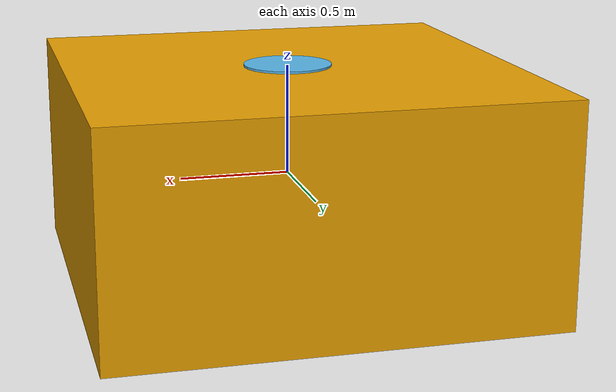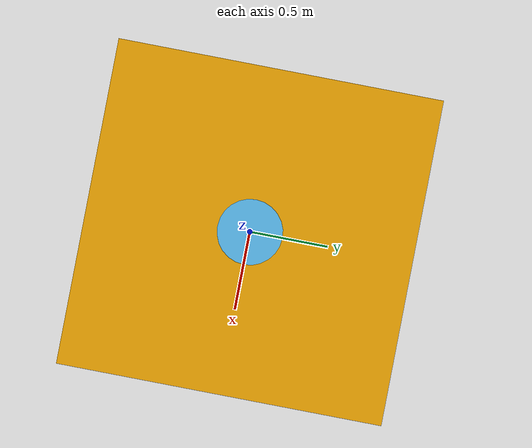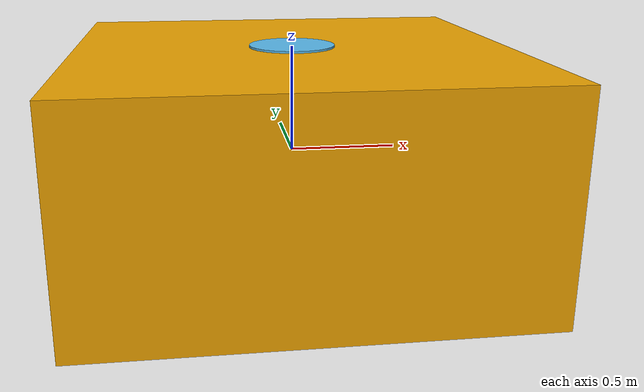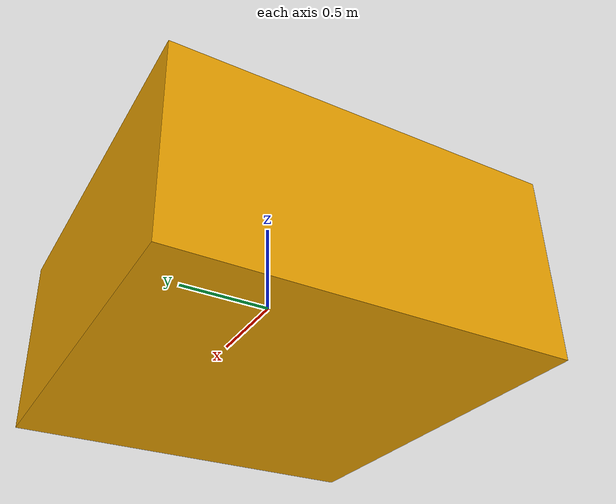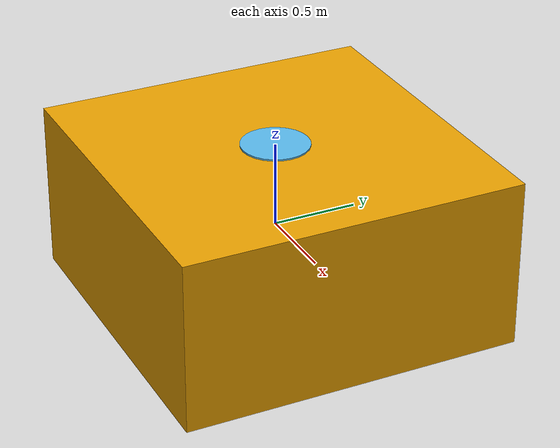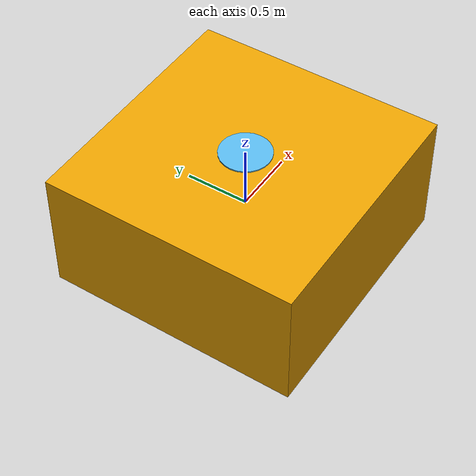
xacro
<?xml version="1.0"?>
    <robot name="arm" xmlns:xacro="http://www.ros.org/wiki/xacro">

        <xacro:macro name="boxes" params="called x y z">
            <link name="${called}">
                <visual>
                    <geometry>
                        <box size="${x} ${y} ${z}" />
                    </geometry>
                </visual>
                <collision>
                    <geometry>
                        <box size="${x} ${y} ${z}" />
                    </geometry>
                </collision>
            </link>
        </xacro:macro>

        <xacro:boxes called="base" x="2" y="2" z="1" />

        <link name="arm_base">
            <visual>
                <geometry>
                    <cylinder length="0.01" radius="0.2" />
                </geometry>
                <origin rpy="0 0 0" xyz="0 0 0.005" />
            </visual>
        </link>

        <joint name="base_to_arm_base" type="continuous">
            <parent link="base" />
            <child link="arm_base" />
            <origin rpy="0 0 0" xyz="0 0 0.5" />
            <axis xyz="0 0 1" />
        </joint>

    </robot>
